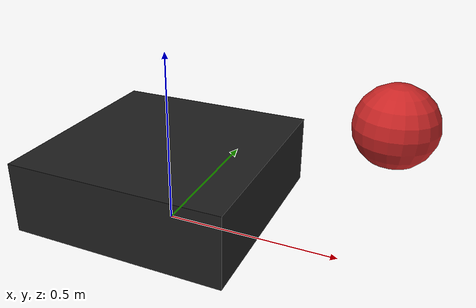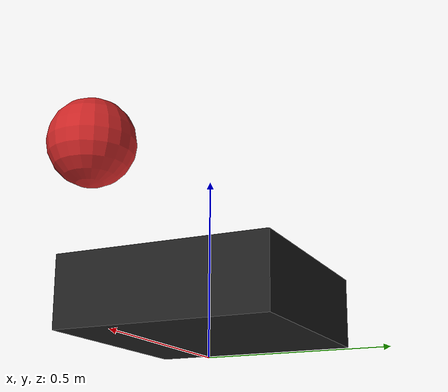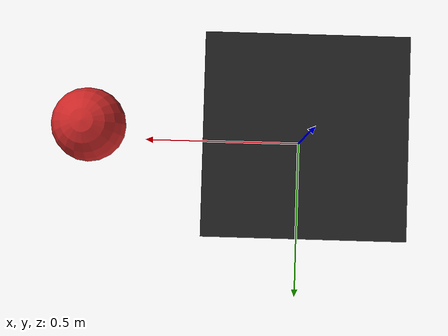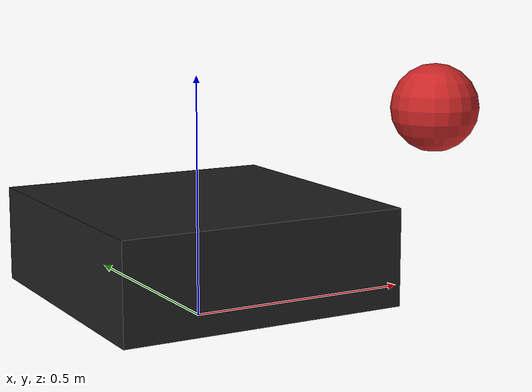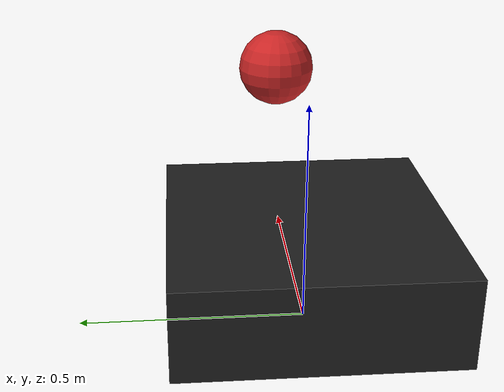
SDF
<sdf version='1.4'>
  <model name='capra6'>
    <link name='base_link'>
      <pose>0 0 0 0 -0 0</pose>
      <inertial>
        <pose>0.3 0 0.2 0 -0 0</pose>
        <mass>2</mass>
        <inertia>
          <ixx>2.08</ixx>
          <ixy>0</ixy>
          <ixz>-0.12</ixz>
          <iyy>2.26</iyy>
          <iyz>0</iyz>
          <izz>2.18</izz>
        </inertia>
      </inertial>
      <collision name='base_link_collision'>
        <pose>0 0 0.15 0 -0 0</pose>
        <geometry>
          <box>
            <size>0.6 0.6 0.2</size>
          </box>
        </geometry>
        <surface>
          <contact>
            <ode/>
          </contact>
          <friction>
            <ode/>
          </friction>
        </surface>
      </collision>
      <collision name='base_link_collision_laser_link'>
        <pose>0.6 0 0.4 0 -0 0</pose>
        <geometry>
          <sphere>
            <radius>0.1</radius>
          </sphere>
        </geometry>
        <surface>
          <contact>
            <ode/>
          </contact>
          <friction>
            <ode/>
          </friction>
        </surface>
        <surface>
          <contact>
            <ode/>
          </contact>
          <friction>
            <ode/>
          </friction>
        </surface>
      </collision>
      <visual name='base_link_visual'>
        <pose>0 0 0.15 0 -0 0</pose>
        <geometry>
          <box>
            <size>0.6 0.6 0.2</size>
          </box>
        </geometry>
        <material>
          <script>
            <name>Gazebo/Black</name>
            <uri>__default__</uri>
          </script>
        </material>
      </visual>
      <visual name='base_link_visual_laser_link'>
        <pose>0.6 0 0.4 0 -0 0</pose>
        <geometry>
          <sphere>
            <radius>0.1</radius>
          </sphere>
        </geometry>
        <material>
          <script>
            <name>Gazebo/Red</name>
            <uri>__default__</uri>
          </script>
        </material>
      </visual>
      <velocity_decay>
        <linear>0</linear>
        <angular>0</angular>
      </velocity_decay>
      <gravity>0</gravity>
      <gravity>1</gravity>
      <velocity_decay>
        <linear>0</linear>
        <angular>0</angular>
      </velocity_decay>
      <self_collide>0</self_collide>
      <gravity>0</gravity>
      <sensor name='laser' type='ray'>
        <ray>
          <scan>
            <horizontal>
              <samples>540</samples>
              <resolution>1</resolution>
              <min_angle>-2.3562</min_angle>
              <max_angle>2.3562</max_angle>
            </horizontal>
          </scan>
          <range>
            <min>0.5</min>
            <max>20</max>
            <resolution>0.01</resolution>
          </range>
          <noise>
            <type>gaussian</type>
            <mean>0</mean>
            <stddev>0.01</stddev>
          </noise>
        </ray>
        <plugin name='laser' filename='libgazebo_ros_laser.so'>
          <topicName>/scan</topicName>
          <frameName>laser</frameName>
        </plugin>
        <always_on>1</always_on>
        <update_rate>30</update_rate>
        <visualize>1</visualize>
        <pose>0.6 0 0.4 0 -0 0</pose>
      </sensor>
    </link>
    <static>0</static>
    <plugin name='object_controller' filename='libgazebo_ros_planar_move.so'>
      <commandTopic>/cmd_vel</commandTopic>
      <odometryTopic>/odom</odometryTopic>
      <odometryRate>20.0</odometryRate>
      <robotBaseFrame>base_footprint</robotBaseFrame>
    </plugin>
  </model>
</sdf>
